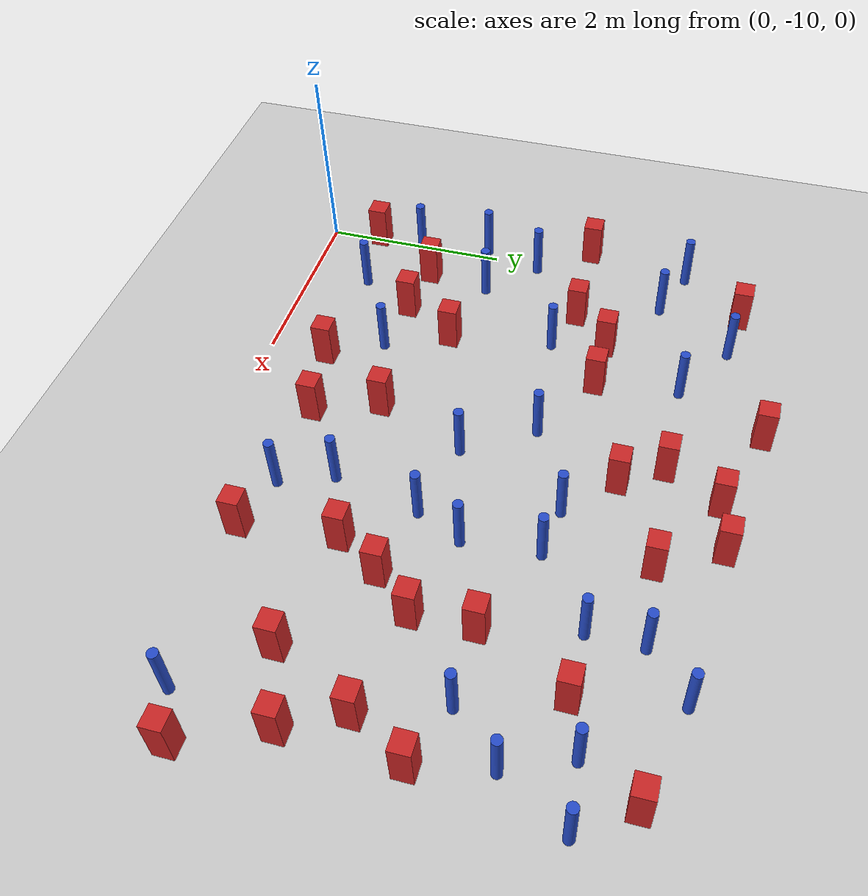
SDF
<sdf version="1.6">
 <world name="default">
  <model name="ground_plane">
   <static>1</static>
   <link name="link">
    <collision name="collision">
     <geometry><plane><normal>0 0 1</normal><size>100 100</size></plane></geometry>
     <surface><friction><ode><mu>100</mu><mu2>50</mu2></ode></friction></surface>
    </collision>
    <visual name="visual">
     <cast_shadows>0</cast_shadows>
     <geometry><plane><normal>0 0 1</normal><size>100 100</size></plane></geometry>
     <material>
      <ambient>1.0 1.0 1.0 1.0</ambient>
      <diffuse>0.8 0.8 0.8 1.0</diffuse>
      <specular>0.01 0.01 0.01 1.000000</specular>
     </material>
    </visual>
   </link>
  </model>
  <model name="pole_obstacle0">
   <static>true</static>
   <pose>5.99241946751 -6.43416623449 -9.47619616065e-06 5.49618799737e-07 2.36310414037e-07 -1.55090534814e-07</pose>
   <link name="link">
    <pose>0 0 0.3 0 -0 0</pose>
    <inertial>
     <mass>1</mass>
     <inertia><ixx>0.145833</ixx><ixy>0</ixy><ixz>0</ixz><iyy>0.145833</iyy><iyz>0</iyz><izz>0.125</izz></inertia>
    </inertial>
    <collision name="collision">
     <geometry><cylinder><radius>0.05</radius><length>.6</length></cylinder></geometry>
    </collision>
    <visual name="visual">
     <geometry><cylinder><radius>0.05</radius><length>.6</length></cylinder></geometry>
     <material>
      <script><name>Gazebo/Blue</name><uri>file://media/materials/scripts/gazebo.material</uri></script>
     </material>
    </visual>
   </link>
  </model>
  <model name="pole_obstacle5">
   <static>true</static>
   <pose>0.42777094523 -6.01034890864 -9.47619616065e-06 5.49618799737e-07 2.36310414065e-07 -1.55090534796e-07</pose>
   <link name="link">
    <pose>0 0 0.3 0 -0 0</pose>
    <inertial>
     <mass>1</mass>
     <inertia><ixx>0.145833</ixx><ixy>0</ixy><ixz>0</ixz><iyy>0.145833</iyy><iyz>0</iyz><izz>0.125</izz></inertia>
    </inertial>
    <collision name="collision">
     <geometry><cylinder><radius>0.05</radius><length>.6</length></cylinder></geometry>
    </collision>
    <visual name="visual">
     <geometry><cylinder><radius>0.05</radius><length>.6</length></cylinder></geometry>
     <material>
      <script><name>Gazebo/Blue</name><uri>file://media/materials/scripts/gazebo.material</uri></script>
     </material>
    </visual>
   </link>
  </model>
  <model name="pole_obstacle13">
   <static>true</static>
   <pose>0.775873148041 -9.32553933954 -9.47619616065e-06 5.49618799737e-07 2.36310414038e-07 -1.55090534813e-07</pose>
   <link name="link">
    <pose>0 0 0.3 0 -0 0</pose>
    <inertial>
     <mass>1</mass>
     <inertia><ixx>0.145833</ixx><ixy>0</ixy><ixz>0</ixz><iyy>0.145833</iyy><iyz>0</iyz><izz>0.125</izz></inertia>
    </inertial>
    <collision name="collision">
     <geometry><cylinder><radius>0.05</radius><length>.6</length></cylinder></geometry>
    </collision>
    <visual name="visual">
     <geometry><cylinder><radius>0.05</radius><length>.6</length></cylinder></geometry>
     <material>
      <script><name>Gazebo/Blue</name><uri>file://media/materials/scripts/gazebo.material</uri></script>
     </material>
    </visual>
   </link>
  </model>
  <model name="square_post_obstacle11">
   <static>true</static>
   <pose>4.32330241227 -9.34425784585 -6.11067671241e-07 -5.50515727128e-06 -8.79689657224e-07 2.37013304536e-05</pose>
   <link name="link">
    <pose>0 0 0.25 0 -0 0</pose>
    <inertial>
     <mass>100</mass>
     <inertia>
      <ixx>0.166667</ixx>
      <ixy>0</ixy>
      <ixz>0</ixz>
      <iyy>0.166667</iyy>
      <iyz>0</iyz>
      <izz>0.166667</izz>
     </inertia>
    </inertial>
    <collision name="collision"><geometry><box><size>.2 .2 .5</size></box></geometry></collision>
    <visual name="visual">
     <geometry><box><size>.2 .2 .5</size></box></geometry>
     <material>
      <script><name>Gazebo/Red</name><uri>file://media/materials/scripts/gazebo.material</uri></script>
     </material>
    </visual>
   </link>
  </model>
  <model name="pole_obstacle14">
   <static>true</static>
   <pose>0.0870210778384 -7.48965490971 -9.47619616065e-06 5.49618799737e-07 2.36310414063e-07 -1.55090534799e-07</pose>
   <link name="link">
    <pose>0 0 0.3 0 -0 0</pose>
    <inertial>
     <mass>1</mass>
     <inertia><ixx>0.145833</ixx><ixy>0</ixy><ixz>0</ixz><iyy>0.145833</iyy><iyz>0</iyz><izz>0.125</izz></inertia>
    </inertial>
    <collision name="collision">
     <geometry><cylinder><radius>0.05</radius><length>.6</length></cylinder></geometry>
    </collision>
    <visual name="visual">
     <geometry><cylinder><radius>0.05</radius><length>.6</length></cylinder></geometry>
     <material>
      <script><name>Gazebo/Blue</name><uri>file://media/materials/scripts/gazebo.material</uri></script>
     </material>
    </visual>
   </link>
  </model>
  <model name="square_post_obstacle16">
   <static>true</static>
   <pose>5.42275318975 -8.51460448586 -6.11067671241e-07 -5.50515727128e-06 -8.79689657224e-07 2.37013304536e-05</pose>
   <link name="link">
    <pose>0 0 0.25 0 -0 0</pose>
    <inertial>
     <mass>100</mass>
     <inertia>
      <ixx>0.166667</ixx>
      <ixy>0</ixy>
      <ixz>0</ixz>
      <iyy>0.166667</iyy>
      <iyz>0</iyz>
      <izz>0.166667</izz>
     </inertia>
    </inertial>
    <collision name="collision"><geometry><box><size>.2 .2 .5</size></box></geometry></collision>
    <visual name="visual">
     <geometry><box><size>.2 .2 .5</size></box></geometry>
     <material>
      <script><name>Gazebo/Red</name><uri>file://media/materials/scripts/gazebo.material</uri></script>
     </material>
    </visual>
   </link>
  </model>
  <model name="pole_obstacle24">
   <static>true</static>
   <pose>6.34445732167 -5.78217876827 -9.47619616065e-06 5.49618799737e-07 2.36310414037e-07 -1.55090534814e-07</pose>
   <link name="link">
    <pose>0 0 0.3 0 -0 0</pose>
    <inertial>
     <mass>1</mass>
     <inertia><ixx>0.145833</ixx><ixy>0</ixy><ixz>0</ixz><iyy>0.145833</iyy><iyz>0</iyz><izz>0.125</izz></inertia>
    </inertial>
    <collision name="collision">
     <geometry><cylinder><radius>0.05</radius><length>.6</length></cylinder></geometry>
    </collision>
    <visual name="visual">
     <geometry><cylinder><radius>0.05</radius><length>.6</length></cylinder></geometry>
     <material>
      <script><name>Gazebo/Blue</name><uri>file://media/materials/scripts/gazebo.material</uri></script>
     </material>
    </visual>
   </link>
  </model>
  <model name="pole_obstacle41">
   <static>true</static>
   <pose>2.93319817149 -7.61096703492 -9.47619616065e-06 5.49618799738e-07 2.3631041406e-07 -1.55090534801e-07</pose>
   <link name="link">
    <pose>0 0 0.3 0 -0 0</pose>
    <inertial>
     <mass>1</mass>
     <inertia><ixx>0.145833</ixx><ixy>0</ixy><ixz>0</ixz><iyy>0.145833</iyy><iyz>0</iyz><izz>0.125</izz></inertia>
    </inertial>
    <collision name="collision">
     <geometry><cylinder><radius>0.05</radius><length>.6</length></cylinder></geometry>
    </collision>
    <visual name="visual">
     <geometry><cylinder><radius>0.05</radius><length>.6</length></cylinder></geometry>
     <material>
      <script><name>Gazebo/Blue</name><uri>file://media/materials/scripts/gazebo.material</uri></script>
     </material>
    </visual>
   </link>
  </model>
  <model name="square_post_obstacle32">
   <static>true</static>
   <pose>6.14314810217 -7.12964278489 -6.11067671241e-07 -5.50515727128e-06 -8.79689657224e-07 2.37013304536e-05</pose>
   <link name="link">
    <pose>0 0 0.25 0 -0 0</pose>
    <inertial>
     <mass>100</mass>
     <inertia>
      <ixx>0.166667</ixx>
      <ixy>0</ixy>
      <ixz>0</ixz>
      <iyy>0.166667</iyy>
      <iyz>0</iyz>
      <izz>0.166667</izz>
     </inertia>
    </inertial>
    <collision name="collision"><geometry><box><size>.2 .2 .5</size></box></geometry></collision>
    <visual name="visual">
     <geometry><box><size>.2 .2 .5</size></box></geometry>
     <material>
      <script><name>Gazebo/Red</name><uri>file://media/materials/scripts/gazebo.material</uri></script>
     </material>
    </visual>
   </link>
  </model>
  <model name="square_post_obstacle33">
   <static>true</static>
   <pose>3.50740594776 -4.93892149736 -6.11067671241e-07 -5.50515727128e-06 -8.79689657224e-07 2.37013304536e-05</pose>
   <link name="link">
    <pose>0 0 0.25 0 -0 0</pose>
    <inertial>
     <mass>100</mass>
     <inertia>
      <ixx>0.166667</ixx>
      <ixy>0</ixy>
      <ixz>0</ixz>
      <iyy>0.166667</iyy>
      <iyz>0</iyz>
      <izz>0.166667</izz>
     </inertia>
    </inertial>
    <collision name="collision"><geometry><box><size>.2 .2 .5</size></box></geometry></collision>
    <visual name="visual">
     <geometry><box><size>.2 .2 .5</size></box></geometry>
     <material>
      <script><name>Gazebo/Red</name><uri>file://media/materials/scripts/gazebo.material</uri></script>
     </material>
    </visual>
   </link>
  </model>
  <model name="pole_obstacle43">
   <static>true</static>
   <pose>1.62779263539 -5.62388809391 -9.47619616065e-06 5.49618799737e-07 2.36310414061e-07 -1.550905348e-07</pose>
   <link name="link">
    <pose>0 0 0.3 0 -0 0</pose>
    <inertial>
     <mass>1</mass>
     <inertia><ixx>0.145833</ixx><ixy>0</ixy><ixz>0</ixz><iyy>0.145833</iyy><iyz>0</iyz><izz>0.125</izz></inertia>
    </inertial>
    <collision name="collision">
     <geometry><cylinder><radius>0.05</radius><length>.6</length></cylinder></geometry>
    </collision>
    <visual name="visual">
     <geometry><cylinder><radius>0.05</radius><length>.6</length></cylinder></geometry>
     <material>
      <script><name>Gazebo/Blue</name><uri>file://media/materials/scripts/gazebo.material</uri></script>
     </material>
    </visual>
   </link>
  </model>
  <model name="pole_obstacle44">
   <static>true</static>
   <pose>3.55397534535 -8.67864506908 -9.4761961606e-06 5.49618799729e-07 2.36310414e-07 -1.55090534824e-07</pose>
   <link name="link">
    <pose>0 0 0.3 0 -0 0</pose>
    <inertial>
     <mass>1</mass>
     <inertia><ixx>0.145833</ixx><ixy>0</ixy><ixz>0</ixz><iyy>0.145833</iyy><iyz>0</iyz><izz>0.125</izz></inertia>
    </inertial>
    <collision name="collision">
     <geometry><cylinder><radius>0.05</radius><length>.6</length></cylinder></geometry>
    </collision>
    <visual name="visual">
     <geometry><cylinder><radius>0.05</radius><length>.6</length></cylinder></geometry>
     <material>
      <script><name>Gazebo/Blue</name><uri>file://media/materials/scripts/gazebo.material</uri></script>
     </material>
    </visual>
   </link>
  </model>
  <model name="square_post_obstacle37">
   <static>true</static>
   <pose>0.769073441208 -6.88267445382 -6.11067671241e-07 -5.50515727128e-06 -8.79689657224e-07 2.37013304536e-05</pose>
   <link name="link">
    <pose>0 0 0.25 0 -0 0</pose>
    <inertial>
     <mass>100</mass>
     <inertia>
      <ixx>0.166667</ixx>
      <ixy>0</ixy>
      <ixz>0</ixz>
      <iyy>0.166667</iyy>
      <iyz>0</iyz>
      <izz>0.166667</izz>
     </inertia>
    </inertial>
    <collision name="collision"><geometry><box><size>.2 .2 .5</size></box></geometry></collision>
    <visual name="visual">
     <geometry><box><size>.2 .2 .5</size></box></geometry>
     <material>
      <script><name>Gazebo/Red</name><uri>file://media/materials/scripts/gazebo.material</uri></script>
     </material>
    </visual>
   </link>
  </model>
  <model name="pole_obstacle48">
   <static>true</static>
   <pose>5.98614644102 -9.24511098506 -9.47619616065e-06 5.49618799737e-07 2.36310414065e-07 -1.55090534796e-07</pose>
   <link name="link">
    <pose>0 0 0.3 0 -0 0</pose>
    <inertial>
     <mass>1</mass>
     <inertia><ixx>0.145833</ixx><ixy>0</ixy><ixz>0</ixz><iyy>0.145833</iyy><iyz>0</iyz><izz>0.125</izz></inertia>
    </inertial>
    <collision name="collision">
     <geometry><cylinder><radius>0.05</radius><length>.6</length></cylinder></geometry>
    </collision>
    <visual name="visual">
     <geometry><cylinder><radius>0.05</radius><length>.6</length></cylinder></geometry>
     <material>
      <script><name>Gazebo/Blue</name><uri>file://media/materials/scripts/gazebo.material</uri></script>
     </material>
    </visual>
   </link>
  </model>
  <model name="square_post_obstacle38">
   <static>true</static>
   <pose>0.379442224547 -5.14035684653 -6.11067671241e-07 -5.50515727128e-06 -8.79689657224e-07 2.37013304536e-05</pose>
   <link name="link">
    <pose>0 0 0.25 0 -0 0</pose>
    <inertial>
     <mass>100</mass>
     <inertia>
      <ixx>0.166667</ixx>
      <ixy>0</ixy>
      <ixz>0</ixz>
      <iyy>0.166667</iyy>
      <iyz>0</iyz>
      <izz>0.166667</izz>
     </inertia>
    </inertial>
    <collision name="collision"><geometry><box><size>.2 .2 .5</size></box></geometry></collision>
    <visual name="visual">
     <geometry><box><size>.2 .2 .5</size></box></geometry>
     <material>
      <script><name>Gazebo/Red</name><uri>file://media/materials/scripts/gazebo.material</uri></script>
     </material>
    </visual>
   </link>
  </model>
  <model name="square_post_obstacle40">
   <static>true</static>
   <pose>2.95809175233 -6.03029839213 -6.11067671241e-07 -5.50515727128e-06 -8.79689657224e-07 2.37013304536e-05</pose>
   <link name="link">
    <pose>0 0 0.25 0 -0 0</pose>
    <inertial>
     <mass>100</mass>
     <inertia>
      <ixx>0.166667</ixx>
      <ixy>0</ixy>
      <ixz>0</ixz>
      <iyy>0.166667</iyy>
      <iyz>0</iyz>
      <izz>0.166667</izz>
     </inertia>
    </inertial>
    <collision name="collision"><geometry><box><size>.2 .2 .5</size></box></geometry></collision>
    <visual name="visual">
     <geometry><box><size>.2 .2 .5</size></box></geometry>
     <material>
      <script><name>Gazebo/Red</name><uri>file://media/materials/scripts/gazebo.material</uri></script>
     </material>
    </visual>
   </link>
  </model>
  <model name="pole_obstacle60">
   <static>true</static>
   <pose>3.41486497941 -6.48596723546 -9.47619616065e-06 5.49618799738e-07 2.3631041406e-07 -1.55090534801e-07</pose>
   <link name="link">
    <pose>0 0 0.3 0 -0 0</pose>
    <inertial>
     <mass>1</mass>
     <inertia><ixx>0.145833</ixx><ixy>0</ixy><ixz>0</ixz><iyy>0.145833</iyy><iyz>0</iyz><izz>0.125</izz></inertia>
    </inertial>
    <collision name="collision">
     <geometry><cylinder><radius>0.05</radius><length>.6</length></cylinder></geometry>
    </collision>
    <visual name="visual">
     <geometry><cylinder><radius>0.05</radius><length>.6</length></cylinder></geometry>
     <material>
      <script><name>Gazebo/Blue</name><uri>file://media/materials/scripts/gazebo.material</uri></script>
     </material>
    </visual>
   </link>
  </model>
  <model name="square_post_obstacle46">
   <static>true</static>
   <pose>6.11223898464 -8.22738665968 -6.11067671241e-07 -5.50515727128e-06 -8.79689657224e-07 2.37013304536e-05</pose>
   <link name="link">
    <pose>0 0 0.25 0 -0 0</pose>
    <inertial>
     <mass>100</mass>
     <inertia>
      <ixx>0.166667</ixx>
      <ixy>0</ixy>
      <ixz>0</ixz>
      <iyy>0.166667</iyy>
      <iyz>0</iyz>
      <izz>0.166667</izz>
     </inertia>
    </inertial>
    <collision name="collision"><geometry><box><size>.2 .2 .5</size></box></geometry></collision>
    <visual name="visual">
     <geometry><box><size>.2 .2 .5</size></box></geometry>
     <material>
      <script><name>Gazebo/Red</name><uri>file://media/materials/scripts/gazebo.material</uri></script>
     </material>
    </visual>
   </link>
  </model>
  <model name="pole_obstacle66">
   <static>true</static>
   <pose>1.26290681179 -7.06058610948 -9.47619616065e-06 5.49618799737e-07 2.36310414061e-07 -1.550905348e-07</pose>
   <link name="link">
    <pose>0 0 0.3 0 -0 0</pose>
    <inertial>
     <mass>1</mass>
     <inertia><ixx>0.145833</ixx><ixy>0</ixy><ixz>0</ixz><iyy>0.145833</iyy><iyz>0</iyz><izz>0.125</izz></inertia>
    </inertial>
    <collision name="collision">
     <geometry><cylinder><radius>0.05</radius><length>.6</length></cylinder></geometry>
    </collision>
    <visual name="visual">
     <geometry><cylinder><radius>0.05</radius><length>.6</length></cylinder></geometry>
     <material>
      <script><name>Gazebo/Blue</name><uri>file://media/materials/scripts/gazebo.material</uri></script>
     </material>
    </visual>
   </link>
  </model>
  <model name="square_post_obstacle53">
   <static>true</static>
   <pose>0.492399578169 -8.64545292982 -6.11067671241e-07 -5.50515727128e-06 -8.79689657224e-07 2.37013304536e-05</pose>
   <link name="link">
    <pose>0 0 0.25 0 -0 0</pose>
    <inertial>
     <mass>100</mass>
     <inertia>
      <ixx>0.166667</ixx>
      <ixy>0</ixy>
      <ixz>0</ixz>
      <iyy>0.166667</iyy>
      <iyz>0</iyz>
      <izz>0.166667</izz>
     </inertia>
    </inertial>
    <collision name="collision"><geometry><box><size>.2 .2 .5</size></box></geometry></collision>
    <visual name="visual">
     <geometry><box><size>.2 .2 .5</size></box></geometry>
     <material>
      <script><name>Gazebo/Red</name><uri>file://media/materials/scripts/gazebo.material</uri></script>
     </material>
    </visual>
   </link>
  </model>
  <model name="square_post_obstacle54">
   <static>true</static>
   <pose>1.16315857543 -6.49085855717 -6.11067671241e-07 -5.50515727128e-06 -8.79689657224e-07 2.37013304536e-05</pose>
   <link name="link">
    <pose>0 0 0.25 0 -0 0</pose>
    <inertial>
     <mass>100</mass>
     <inertia>
      <ixx>0.166667</ixx>
      <ixy>0</ixy>
      <ixz>0</ixz>
      <iyy>0.166667</iyy>
      <iyz>0</iyz>
      <izz>0.166667</izz>
     </inertia>
    </inertial>
    <collision name="collision"><geometry><box><size>.2 .2 .5</size></box></geometry></collision>
    <visual name="visual">
     <geometry><box><size>.2 .2 .5</size></box></geometry>
     <material>
      <script><name>Gazebo/Red</name><uri>file://media/materials/scripts/gazebo.material</uri></script>
     </material>
    </visual>
   </link>
  </model>
  <model name="square_post_obstacle58">
   <static>true</static>
   <pose>2.05451719014 -4.73804565977 -6.11067671241e-07 -5.50515727128e-06 -8.79689657224e-07 2.37013304536e-05</pose>
   <link name="link">
    <pose>0 0 0.25 0 -0 0</pose>
    <inertial>
     <mass>100</mass>
     <inertia>
      <ixx>0.166667</ixx>
      <ixy>0</ixy>
      <ixz>0</ixz>
      <iyy>0.166667</iyy>
      <iyz>0</iyz>
      <izz>0.166667</izz>
     </inertia>
    </inertial>
    <collision name="collision"><geometry><box><size>.2 .2 .5</size></box></geometry></collision>
    <visual name="visual">
     <geometry><box><size>.2 .2 .5</size></box></geometry>
     <material>
      <script><name>Gazebo/Red</name><uri>file://media/materials/scripts/gazebo.material</uri></script>
     </material>
    </visual>
   </link>
  </model>
  <model name="square_post_obstacle60">
   <static>true</static>
   <pose>4.23607168523 -8.37457816268 -6.11067671241e-07 -5.50515727128e-06 -8.79689657224e-07 2.37013304536e-05</pose>
   <link name="link">
    <pose>0 0 0.25 0 -0 0</pose>
    <inertial>
     <mass>100</mass>
     <inertia>
      <ixx>0.166667</ixx>
      <ixy>0</ixy>
      <ixz>0</ixz>
      <iyy>0.166667</iyy>
      <iyz>0</iyz>
      <izz>0.166667</izz>
     </inertia>
    </inertial>
    <collision name="collision"><geometry><box><size>.2 .2 .5</size></box></geometry></collision>
    <visual name="visual">
     <geometry><box><size>.2 .2 .5</size></box></geometry>
     <material>
      <script><name>Gazebo/Red</name><uri>file://media/materials/scripts/gazebo.material</uri></script>
     </material>
    </visual>
   </link>
  </model>
  <model name="square_post_obstacle70">
   <static>true</static>
   <pose>1.43855483052 -8.14565920532 -6.11067671241e-07 -5.50515727128e-06 -8.79689657224e-07 2.37013304536e-05</pose>
   <link name="link">
    <pose>0 0 0.25 0 -0 0</pose>
    <inertial>
     <mass>100</mass>
     <inertia>
      <ixx>0.166667</ixx>
      <ixy>0</ixy>
      <ixz>0</ixz>
      <iyy>0.166667</iyy>
      <iyz>0</iyz>
      <izz>0.166667</izz>
     </inertia>
    </inertial>
    <collision name="collision"><geometry><box><size>.2 .2 .5</size></box></geometry></collision>
    <visual name="visual">
     <geometry><box><size>.2 .2 .5</size></box></geometry>
     <material>
      <script><name>Gazebo/Red</name><uri>file://media/materials/scripts/gazebo.material</uri></script>
     </material>
    </visual>
   </link>
  </model>
  <model name="square_post_obstacle72">
   <static>true</static>
   <pose>3.82966361186 -5.54182311907 -6.11067671241e-07 -5.50515727128e-06 -8.79689657224e-07 2.37013304536e-05</pose>
   <link name="link">
    <pose>0 0 0.25 0 -0 0</pose>
    <inertial>
     <mass>100</mass>
     <inertia>
      <ixx>0.166667</ixx>
      <ixy>0</ixy>
      <ixz>0</ixz>
      <iyy>0.166667</iyy>
      <iyz>0</iyz>
      <izz>0.166667</izz>
     </inertia>
    </inertial>
    <collision name="collision"><geometry><box><size>.2 .2 .5</size></box></geometry></collision>
    <visual name="visual">
     <geometry><box><size>.2 .2 .5</size></box></geometry>
     <material>
      <script><name>Gazebo/Red</name><uri>file://media/materials/scripts/gazebo.material</uri></script>
     </material>
    </visual>
   </link>
  </model>
  <model name="pole_obstacle88">
   <static>true</static>
   <pose>5.56009223011 -6.91832359856 -9.47619616065e-06 5.49618799737e-07 2.36310414037e-07 -1.55090534814e-07</pose>
   <link name="link">
    <pose>0 0 0.3 0 -0 0</pose>
    <inertial>
     <mass>1</mass>
     <inertia><ixx>0.145833</ixx><ixy>0</ixy><ixz>0</ixz><iyy>0.145833</iyy><iyz>0</iyz><izz>0.125</izz></inertia>
    </inertial>
    <collision name="collision">
     <geometry><cylinder><radius>0.05</radius><length>.6</length></cylinder></geometry>
    </collision>
    <visual name="visual">
     <geometry><cylinder><radius>0.05</radius><length>.6</length></cylinder></geometry>
     <material>
      <script><name>Gazebo/Blue</name><uri>file://media/materials/scripts/gazebo.material</uri></script>
     </material>
    </visual>
   </link>
  </model>
  <model name="square_post_obstacle76">
   <static>true</static>
   <pose>5.84180132804 -7.68657872543 -6.11067671241e-07 -5.50515727128e-06 -8.79689657224e-07 2.37013304536e-05</pose>
   <link name="link">
    <pose>0 0 0.25 0 -0 0</pose>
    <inertial>
     <mass>100</mass>
     <inertia>
      <ixx>0.166667</ixx>
      <ixy>0</ixy>
      <ixz>0</ixz>
      <iyy>0.166667</iyy>
      <iyz>0</iyz>
      <izz>0.166667</izz>
     </inertia>
    </inertial>
    <collision name="collision"><geometry><box><size>.2 .2 .5</size></box></geometry></collision>
    <visual name="visual">
     <geometry><box><size>.2 .2 .5</size></box></geometry>
     <material>
      <script><name>Gazebo/Red</name><uri>file://media/materials/scripts/gazebo.material</uri></script>
     </material>
    </visual>
   </link>
  </model>
  <model name="square_post_obstacle78">
   <static>true</static>
   <pose>2.69048139267 -5.60689109878 -6.11067671241e-07 -5.50515727128e-06 -8.79689657224e-07 2.37013304536e-05</pose>
   <link name="link">
    <pose>0 0 0.25 0 -0 0</pose>
    <inertial>
     <mass>100</mass>
     <inertia>
      <ixx>0.166667</ixx>
      <ixy>0</ixy>
      <ixz>0</ixz>
      <iyy>0.166667</iyy>
      <iyz>0</iyz>
      <izz>0.166667</izz>
     </inertia>
    </inertial>
    <collision name="collision"><geometry><box><size>.2 .2 .5</size></box></geometry></collision>
    <visual name="visual">
     <geometry><box><size>.2 .2 .5</size></box></geometry>
     <material>
      <script><name>Gazebo/Red</name><uri>file://media/materials/scripts/gazebo.material</uri></script>
     </material>
    </visual>
   </link>
  </model>
  <model name="square_post_obstacle83">
   <static>true</static>
   <pose>6.01312358564 -5.30156532975 -6.11067671241e-07 -5.50515727128e-06 -8.79689657224e-07 2.37013304536e-05</pose>
   <link name="link">
    <pose>0 0 0.25 0 -0 0</pose>
    <inertial>
     <mass>100</mass>
     <inertia>
      <ixx>0.166667</ixx>
      <ixy>0</ixy>
      <ixz>0</ixz>
      <iyy>0.166667</iyy>
      <iyz>0</iyz>
      <izz>0.166667</izz>
     </inertia>
    </inertial>
    <collision name="collision"><geometry><box><size>.2 .2 .5</size></box></geometry></collision>
    <visual name="visual">
     <geometry><box><size>.2 .2 .5</size></box></geometry>
     <material>
      <script><name>Gazebo/Red</name><uri>file://media/materials/scripts/gazebo.material</uri></script>
     </material>
    </visual>
   </link>
  </model>
  <model name="pole_obstacle93">
   <static>true</static>
   <pose>-0.147644071426 -5.80743205294 -9.47619616065e-06 5.49618799737e-07 2.36310414062e-07 -1.550905348e-07</pose>
   <link name="link">
    <pose>0 0 0.3 0 -0 0</pose>
    <inertial>
     <mass>1</mass>
     <inertia><ixx>0.145833</ixx><ixy>0</ixy><ixz>0</ixz><iyy>0.145833</iyy><iyz>0</iyz><izz>0.125</izz></inertia>
    </inertial>
    <collision name="collision">
     <geometry><cylinder><radius>0.05</radius><length>.6</length></cylinder></geometry>
    </collision>
    <visual name="visual">
     <geometry><cylinder><radius>0.05</radius><length>.6</length></cylinder></geometry>
     <material>
      <script><name>Gazebo/Blue</name><uri>file://media/materials/scripts/gazebo.material</uri></script>
     </material>
    </visual>
   </link>
  </model>
  <model name="pole_obstacle96">
   <static>true</static>
   <pose>3.97596157425 -7.31529230225 -9.47619616065e-06 5.49618799737e-07 2.36310414049e-07 -1.55090534808e-07</pose>
   <link name="link">
    <pose>0 0 0.3 0 -0 0</pose>
    <inertial>
     <mass>1</mass>
     <inertia><ixx>0.145833</ixx><ixy>0</ixy><ixz>0</ixz><iyy>0.145833</iyy><iyz>0</iyz><izz>0.125</izz></inertia>
    </inertial>
    <collision name="collision">
     <geometry><cylinder><radius>0.05</radius><length>.6</length></cylinder></geometry>
    </collision>
    <visual name="visual">
     <geometry><cylinder><radius>0.05</radius><length>.6</length></cylinder></geometry>
     <material>
      <script><name>Gazebo/Blue</name><uri>file://media/materials/scripts/gazebo.material</uri></script>
     </material>
    </visual>
   </link>
  </model>
  <model name="pole_obstacle100">
   <static>true</static>
   <pose>0.58080758319 -7.97608189412 -9.47619616065e-06 5.49618799737e-07 2.36310414051e-07 -1.55090534805e-07</pose>
   <link name="link">
    <pose>0 0 0.3 0 -0 0</pose>
    <inertial>
     <mass>1</mass>
     <inertia><ixx>0.145833</ixx><ixy>0</ixy><ixz>0</ixz><iyy>0.145833</iyy><iyz>0</iyz><izz>0.125</izz></inertia>
    </inertial>
    <collision name="collision">
     <geometry><cylinder><radius>0.05</radius><length>.6</length></cylinder></geometry>
    </collision>
    <visual name="visual">
     <geometry><cylinder><radius>0.05</radius><length>.6</length></cylinder></geometry>
     <material>
      <script><name>Gazebo/Blue</name><uri>file://media/materials/scripts/gazebo.material</uri></script>
     </material>
    </visual>
   </link>
  </model>
  <model name="square_post_obstacle95">
   <static>true</static>
   <pose>4.83171853792 -6.91309922916 -6.11067671241e-07 -5.50515727128e-06 -8.79689657224e-07 2.37013304536e-05</pose>
   <link name="link">
    <pose>0 0 0.25 0 -0 0</pose>
    <inertial>
     <mass>100</mass>
     <inertia>
      <ixx>0.166667</ixx>
      <ixy>0</ixy>
      <ixz>0</ixz>
      <iyy>0.166667</iyy>
      <iyz>0</iyz>
      <izz>0.166667</izz>
     </inertia>
    </inertial>
    <collision name="collision"><geometry><box><size>.2 .2 .5</size></box></geometry></collision>
    <visual name="visual">
     <geometry><box><size>.2 .2 .5</size></box></geometry>
     <material>
      <script><name>Gazebo/Red</name><uri>file://media/materials/scripts/gazebo.material</uri></script>
     </material>
    </visual>
   </link>
  </model>
  <model name="square_post_obstacle97">
   <static>true</static>
   <pose>4.84715045723 -7.51955522371 -6.11067671241e-07 -5.50515727128e-06 -8.79689657224e-07 2.37013304536e-05</pose>
   <link name="link">
    <pose>0 0 0.25 0 -0 0</pose>
    <inertial>
     <mass>100</mass>
     <inertia>
      <ixx>0.166667</ixx>
      <ixy>0</ixy>
      <ixz>0</ixz>
      <iyy>0.166667</iyy>
      <iyz>0</iyz>
      <izz>0.166667</izz>
     </inertia>
    </inertial>
    <collision name="collision"><geometry><box><size>.2 .2 .5</size></box></geometry></collision>
    <visual name="visual">
     <geometry><box><size>.2 .2 .5</size></box></geometry>
     <material>
      <script><name>Gazebo/Red</name><uri>file://media/materials/scripts/gazebo.material</uri></script>
     </material>
    </visual>
   </link>
  </model>
  <model name="square_post_obstacle109">
   <static>true</static>
   <pose>2.5705029415 -8.53972938645 -6.11067671241e-07 -5.50515727128e-06 -8.79689657224e-07 2.37013304536e-05</pose>
   <link name="link">
    <pose>0 0 0.25 0 -0 0</pose>
    <inertial>
     <mass>100</mass>
     <inertia>
      <ixx>0.166667</ixx>
      <ixy>0</ixy>
      <ixz>0</ixz>
      <iyy>0.166667</iyy>
      <iyz>0</iyz>
      <izz>0.166667</izz>
     </inertia>
    </inertial>
    <collision name="collision"><geometry><box><size>.2 .2 .5</size></box></geometry></collision>
    <visual name="visual">
     <geometry><box><size>.2 .2 .5</size></box></geometry>
     <material>
      <script><name>Gazebo/Red</name><uri>file://media/materials/scripts/gazebo.material</uri></script>
     </material>
    </visual>
   </link>
  </model>
  <model name="square_post_obstacle114">
   <static>true</static>
   <pose>0.00595835529791 -9.41388338378 -6.11067671241e-07 -5.50515727128e-06 -8.79689657224e-07 2.37013304536e-05</pose>
   <link name="link">
    <pose>0 0 0.25 0 -0 0</pose>
    <inertial>
     <mass>100</mass>
     <inertia>
      <ixx>0.166667</ixx>
      <ixy>0</ixy>
      <ixz>0</ixz>
      <iyy>0.166667</iyy>
      <iyz>0</iyz>
      <izz>0.166667</izz>
     </inertia>
    </inertial>
    <collision name="collision"><geometry><box><size>.2 .2 .5</size></box></geometry></collision>
    <visual name="visual">
     <geometry><box><size>.2 .2 .5</size></box></geometry>
     <material>
      <script><name>Gazebo/Red</name><uri>file://media/materials/scripts/gazebo.material</uri></script>
     </material>
    </visual>
   </link>
  </model>
  <model name="pole_obstacle119">
   <static>true</static>
   <pose>0.937249858687 -5.20120209892 -9.47619616065e-06 5.49618799737e-07 2.36310414065e-07 -1.55090534796e-07</pose>
   <link name="link">
    <pose>0 0 0.3 0 -0 0</pose>
    <inertial>
     <mass>1</mass>
     <inertia><ixx>0.145833</ixx><ixy>0</ixy><ixz>0</ixz><iyy>0.145833</iyy><iyz>0</iyz><izz>0.125</izz></inertia>
    </inertial>
    <collision name="collision">
     <geometry><cylinder><radius>0.05</radius><length>.6</length></cylinder></geometry>
    </collision>
    <visual name="visual">
     <geometry><cylinder><radius>0.05</radius><length>.6</length></cylinder></geometry>
     <material>
      <script><name>Gazebo/Blue</name><uri>file://media/materials/scripts/gazebo.material</uri></script>
     </material>
    </visual>
   </link>
  </model>
  <model name="pole_obstacle125">
   <static>true</static>
   <pose>4.62891903487 -5.47524710677 -9.47619616065e-06 5.49618799737e-07 2.36310414037e-07 -1.55090534814e-07</pose>
   <link name="link">
    <pose>0 0 0.3 0 -0 0</pose>
    <inertial>
     <mass>1</mass>
     <inertia><ixx>0.145833</ixx><ixy>0</ixy><ixz>0</ixz><iyy>0.145833</iyy><iyz>0</iyz><izz>0.125</izz></inertia>
    </inertial>
    <collision name="collision">
     <geometry><cylinder><radius>0.05</radius><length>.6</length></cylinder></geometry>
    </collision>
    <visual name="visual">
     <geometry><cylinder><radius>0.05</radius><length>.6</length></cylinder></geometry>
     <material>
      <script><name>Gazebo/Blue</name><uri>file://media/materials/scripts/gazebo.material</uri></script>
     </material>
    </visual>
   </link>
  </model>
  <model name="square_post_obstacle131">
   <static>true</static>
   <pose>1.73867536407 -6.49273728326 -6.11067671241e-07 -5.50515727128e-06 -8.79689657224e-07 2.37013304536e-05</pose>
   <link name="link">
    <pose>0 0 0.25 0 -0 0</pose>
    <inertial>
     <mass>100</mass>
     <inertia>
      <ixx>0.166667</ixx>
      <ixy>0</ixy>
      <ixz>0</ixz>
      <iyy>0.166667</iyy>
      <iyz>0</iyz>
      <izz>0.166667</izz>
     </inertia>
    </inertial>
    <collision name="collision"><geometry><box><size>.2 .2 .5</size></box></geometry></collision>
    <visual name="visual">
     <geometry><box><size>.2 .2 .5</size></box></geometry>
     <material>
      <script><name>Gazebo/Red</name><uri>file://media/materials/scripts/gazebo.material</uri></script>
     </material>
    </visual>
   </link>
  </model>
  <model name="square_post_obstacle132">
   <static>true</static>
   <pose>5.26081800911 -6.0176449394 -6.11067671241e-07 -5.50515727128e-06 -8.79689657224e-07 2.37013304536e-05</pose>
   <link name="link">
    <pose>0 0 0.25 0 -0 0</pose>
    <inertial>
     <mass>100</mass>
     <inertia>
      <ixx>0.166667</ixx>
      <ixy>0</ixy>
      <ixz>0</ixz>
      <iyy>0.166667</iyy>
      <iyz>0</iyz>
      <izz>0.166667</izz>
     </inertia>
    </inertial>
    <collision name="collision"><geometry><box><size>.2 .2 .5</size></box></geometry></collision>
    <visual name="visual">
     <geometry><box><size>.2 .2 .5</size></box></geometry>
     <material>
      <script><name>Gazebo/Red</name><uri>file://media/materials/scripts/gazebo.material</uri></script>
     </material>
    </visual>
   </link>
  </model>
  <model name="pole_obstacle134">
   <static>true</static>
   <pose>5.0737028729 -5.05507693935 -9.47619616065e-06 5.49618799737e-07 2.36310414037e-07 -1.55090534814e-07</pose>
   <link name="link">
    <pose>0 0 0.3 0 -0 0</pose>
    <inertial>
     <mass>1</mass>
     <inertia><ixx>0.145833</ixx><ixy>0</ixy><ixz>0</ixz><iyy>0.145833</iyy><iyz>0</iyz><izz>0.125</izz></inertia>
    </inertial>
    <collision name="collision">
     <geometry><cylinder><radius>0.05</radius><length>.6</length></cylinder></geometry>
    </collision>
    <visual name="visual">
     <geometry><cylinder><radius>0.05</radius><length>.6</length></cylinder></geometry>
     <material>
      <script><name>Gazebo/Blue</name><uri>file://media/materials/scripts/gazebo.material</uri></script>
     </material>
    </visual>
   </link>
  </model>
  <model name="square_post_obstacle135">
   <static>true</static>
   <pose>-0.313893572052 -6.92312467733 -6.11067671241e-07 -5.50515727128e-06 -8.79689657224e-07 2.37013304536e-05</pose>
   <link name="link">
    <pose>0 0 0.25 0 -0 0</pose>
    <inertial>
     <mass>100</mass>
     <inertia>
      <ixx>0.166667</ixx>
      <ixy>0</ixy>
      <ixz>0</ixz>
      <iyy>0.166667</iyy>
      <iyz>0</iyz>
      <izz>0.166667</izz>
     </inertia>
    </inertial>
    <collision name="collision"><geometry><box><size>.2 .2 .5</size></box></geometry></collision>
    <visual name="visual">
     <geometry><box><size>.2 .2 .5</size></box></geometry>
     <material>
      <script><name>Gazebo/Red</name><uri>file://media/materials/scripts/gazebo.material</uri></script>
     </material>
    </visual>
   </link>
  </model>
  <model name="pole_obstacle147">
   <static>true</static>
   <pose>-0.000760247916841 -8.91045351846 -9.47619616065e-06 5.49618799737e-07 2.3631041404e-07 -1.55090534813e-07</pose>
   <link name="link">
    <pose>0 0 0.3 0 -0 0</pose>
    <inertial>
     <mass>1</mass>
     <inertia><ixx>0.145833</ixx><ixy>0</ixy><ixz>0</ixz><iyy>0.145833</iyy><iyz>0</iyz><izz>0.125</izz></inertia>
    </inertial>
    <collision name="collision">
     <geometry><cylinder><radius>0.05</radius><length>.6</length></cylinder></geometry>
    </collision>
    <visual name="visual">
     <geometry><cylinder><radius>0.05</radius><length>.6</length></cylinder></geometry>
     <material>
      <script><name>Gazebo/Blue</name><uri>file://media/materials/scripts/gazebo.material</uri></script>
     </material>
    </visual>
   </link>
  </model>
  <model name="square_post_obstacle141">
   <static>true</static>
   <pose>2.01211696933 -9.34844187267 -6.11067671241e-07 -5.50515727128e-06 -8.79689657224e-07 2.37013304536e-05</pose>
   <link name="link">
    <pose>0 0 0.25 0 -0 0</pose>
    <inertial>
     <mass>100</mass>
     <inertia>
      <ixx>0.166667</ixx>
      <ixy>0</ixy>
      <ixz>0</ixz>
      <iyy>0.166667</iyy>
      <iyz>0</iyz>
      <izz>0.166667</izz>
     </inertia>
    </inertial>
    <collision name="collision"><geometry><box><size>.2 .2 .5</size></box></geometry></collision>
    <visual name="visual">
     <geometry><box><size>.2 .2 .5</size></box></geometry>
     <material>
      <script><name>Gazebo/Red</name><uri>file://media/materials/scripts/gazebo.material</uri></script>
     </material>
    </visual>
   </link>
  </model>
  <model name="pole_obstacle148">
   <static>true</static>
   <pose>1.71236268502 -8.80751371277 -9.47619616065e-06 5.49618799737e-07 2.36310414046e-07 -1.55090534809e-07</pose>
   <link name="link">
    <pose>0 0 0.3 0 -0 0</pose>
    <inertial>
     <mass>1</mass>
     <inertia><ixx>0.145833</ixx><ixy>0</ixy><ixz>0</ixz><iyy>0.145833</iyy><iyz>0</iyz><izz>0.125</izz></inertia>
    </inertial>
    <collision name="collision">
     <geometry><cylinder><radius>0.05</radius><length>.6</length></cylinder></geometry>
    </collision>
    <visual name="visual">
     <geometry><cylinder><radius>0.05</radius><length>.6</length></cylinder></geometry>
     <material>
      <script><name>Gazebo/Blue</name><uri>file://media/materials/scripts/gazebo.material</uri></script>
     </material>
    </visual>
   </link>
  </model>
  <model name="pole_obstacle149">
   <static>true</static>
   <pose>2.49926438011 -6.9262462271 -9.47619616065e-06 5.49618799738e-07 2.3631041406e-07 -1.55090534801e-07</pose>
   <link name="link">
    <pose>0 0 0.3 0 -0 0</pose>
    <inertial>
     <mass>1</mass>
     <inertia><ixx>0.145833</ixx><ixy>0</ixy><ixz>0</ixz><iyy>0.145833</iyy><iyz>0</iyz><izz>0.125</izz></inertia>
    </inertial>
    <collision name="collision">
     <geometry><cylinder><radius>0.05</radius><length>.6</length></cylinder></geometry>
    </collision>
    <visual name="visual">
     <geometry><cylinder><radius>0.05</radius><length>.6</length></cylinder></geometry>
     <material>
      <script><name>Gazebo/Blue</name><uri>file://media/materials/scripts/gazebo.material</uri></script>
     </material>
    </visual>
   </link>
  </model>
  <model name="square_post_obstacle143">
   <static>true</static>
   <pose>2.80528834129 -9.19529671113 -6.11067671241e-07 -5.50515727128e-06 -8.79689657224e-07 2.37013304536e-05</pose>
   <link name="link">
    <pose>0 0 0.25 0 -0 0</pose>
    <inertial>
     <mass>100</mass>
     <inertia>
      <ixx>0.166667</ixx>
      <ixy>0</ixy>
      <ixz>0</ixz>
      <iyy>0.166667</iyy>
      <iyz>0</iyz>
      <izz>0.166667</izz>
     </inertia>
    </inertial>
    <collision name="collision"><geometry><box><size>.2 .2 .5</size></box></geometry></collision>
    <visual name="visual">
     <geometry><box><size>.2 .2 .5</size></box></geometry>
     <material>
      <script><name>Gazebo/Red</name><uri>file://media/materials/scripts/gazebo.material</uri></script>
     </material>
    </visual>
   </link>
  </model>
  <model name="pole_obstacle160">
   <static>true</static>
   <pose>3.75856557716 -7.78326670486 -9.47619616065e-06 5.49618799738e-07 2.3631041406e-07 -1.55090534801e-07</pose>
   <link name="link">
    <pose>0 0 0.3 0 -0 0</pose>
    <inertial>
     <mass>1</mass>
     <inertia><ixx>0.145833</ixx><ixy>0</ixy><ixz>0</ixz><iyy>0.145833</iyy><iyz>0</iyz><izz>0.125</izz></inertia>
    </inertial>
    <collision name="collision">
     <geometry><cylinder><radius>0.05</radius><length>.6</length></cylinder></geometry>
    </collision>
    <visual name="visual">
     <geometry><cylinder><radius>0.05</radius><length>.6</length></cylinder></geometry>
     <material>
      <script><name>Gazebo/Blue</name><uri>file://media/materials/scripts/gazebo.material</uri></script>
     </material>
    </visual>
   </link>
  </model>
  <model name="pole_obstacle162">
   <static>true</static>
   <pose>4.62638917879 -6.01567184599 -9.47619616065e-06 5.49618799737e-07 2.36310414037e-07 -1.55090534814e-07</pose>
   <link name="link">
    <pose>0 0 0.3 0 -0 0</pose>
    <inertial>
     <mass>1</mass>
     <inertia><ixx>0.145833</ixx><ixy>0</ixy><ixz>0</ixz><iyy>0.145833</iyy><iyz>0</iyz><izz>0.125</izz></inertia>
    </inertial>
    <collision name="collision">
     <geometry><cylinder><radius>0.05</radius><length>.6</length></cylinder></geometry>
    </collision>
    <visual name="visual">
     <geometry><cylinder><radius>0.05</radius><length>.6</length></cylinder></geometry>
     <material>
      <script><name>Gazebo/Blue</name><uri>file://media/materials/scripts/gazebo.material</uri></script>
     </material>
    </visual>
   </link>
  </model>
  <model name="square_post_obstacle161">
   <static>true</static>
   <pose>4.51108909822 -7.92110083998 -6.11067671241e-07 -5.50515727128e-06 -8.79689657224e-07 2.37013304536e-05</pose>
   <link name="link">
    <pose>0 0 0.25 0 -0 0</pose>
    <inertial>
     <mass>100</mass>
     <inertia>
      <ixx>0.166667</ixx>
      <ixy>0</ixy>
      <ixz>0</ixz>
      <iyy>0.166667</iyy>
      <iyz>0</iyz>
      <izz>0.166667</izz>
     </inertia>
    </inertial>
    <collision name="collision"><geometry><box><size>.2 .2 .5</size></box></geometry></collision>
    <visual name="visual">
     <geometry><box><size>.2 .2 .5</size></box></geometry>
     <material>
      <script><name>Gazebo/Red</name><uri>file://media/materials/scripts/gazebo.material</uri></script>
     </material>
    </visual>
   </link>
  </model>
  <model name="pole_obstacle179">
   <static>true</static>
   <pose>3.92547799264 -6.55062660991 -9.47619616065e-06 5.49618799738e-07 2.3631041406e-07 -1.55090534801e-07</pose>
   <link name="link">
    <pose>0 0 0.3 0 -0 0</pose>
    <inertial>
     <mass>1</mass>
     <inertia><ixx>0.145833</ixx><ixy>0</ixy><ixz>0</ixz><iyy>0.145833</iyy><iyz>0</iyz><izz>0.125</izz></inertia>
    </inertial>
    <collision name="collision">
     <geometry><cylinder><radius>0.05</radius><length>.6</length></cylinder></geometry>
    </collision>
    <visual name="visual">
     <geometry><cylinder><radius>0.05</radius><length>.6</length></cylinder></geometry>
     <material>
      <script><name>Gazebo/Blue</name><uri>file://media/materials/scripts/gazebo.material</uri></script>
     </material>
    </visual>
   </link>
  </model>
  <model name="pole_obstacle187">
   <static>true</static>
   <pose>-0.0940678120226 -8.11921633949 -9.47619616065e-06 5.49618799738e-07 2.36310414031e-07 -1.55090534818e-07</pose>
   <link name="link">
    <pose>0 0 0.3 0 -0 0</pose>
    <inertial>
     <mass>1</mass>
     <inertia><ixx>0.145833</ixx><ixy>0</ixy><ixz>0</ixz><iyy>0.145833</iyy><iyz>0</iyz><izz>0.125</izz></inertia>
    </inertial>
    <collision name="collision">
     <geometry><cylinder><radius>0.05</radius><length>.6</length></cylinder></geometry>
    </collision>
    <visual name="visual">
     <geometry><cylinder><radius>0.05</radius><length>.6</length></cylinder></geometry>
     <material>
      <script><name>Gazebo/Blue</name><uri>file://media/materials/scripts/gazebo.material</uri></script>
     </material>
    </visual>
   </link>
  </model>
  <model name="square_post_obstacle201">
   <static>true</static>
   <pose>1.0974531401 -8.71808004509 -6.11067671241e-07 -5.50515727128e-06 -8.79689657224e-07 2.37013304536e-05</pose>
   <link name="link">
    <pose>0 0 0.25 0 -0 0</pose>
    <inertial>
     <mass>100</mass>
     <inertia>
      <ixx>0.166667</ixx>
      <ixy>0</ixy>
      <ixz>0</ixz>
      <iyy>0.166667</iyy>
      <iyz>0</iyz>
      <izz>0.166667</izz>
     </inertia>
    </inertial>
    <collision name="collision"><geometry><box><size>.2 .2 .5</size></box></geometry></collision>
    <visual name="visual">
     <geometry><box><size>.2 .2 .5</size></box></geometry>
     <material>
      <script><name>Gazebo/Red</name><uri>file://media/materials/scripts/gazebo.material</uri></script>
     </material>
    </visual>
   </link>
  </model>
  <model name="square_post_obstacle205">
   <static>true</static>
   <pose>2.99165324432 -5.04242431881 -6.11067671241e-07 -5.50515727128e-06 -8.79689657224e-07 2.37013304536e-05</pose>
   <link name="link">
    <pose>0 0 0.25 0 -0 0</pose>
    <inertial>
     <mass>100</mass>
     <inertia>
      <ixx>0.166667</ixx>
      <ixy>0</ixy>
      <ixz>0</ixz>
      <iyy>0.166667</iyy>
      <iyz>0</iyz>
      <izz>0.166667</izz>
     </inertia>
    </inertial>
    <collision name="collision"><geometry><box><size>.2 .2 .5</size></box></geometry></collision>
    <visual name="visual">
     <geometry><box><size>.2 .2 .5</size></box></geometry>
     <material>
      <script><name>Gazebo/Red</name><uri>file://media/materials/scripts/gazebo.material</uri></script>
     </material>
    </visual>
   </link>
  </model>
  <model name="pole_obstacle193">
   <static>true</static>
   <pose>3.74821099091 -9.21002142364 -9.4761961606e-06 5.49618799729e-07 2.36310414e-07 -1.55090534824e-07</pose>
   <link name="link">
    <pose>0 0 0.3 0 -0 0</pose>
    <inertial>
     <mass>1</mass>
     <inertia><ixx>0.145833</ixx><ixy>0</ixy><ixz>0</ixz><iyy>0.145833</iyy><iyz>0</iyz><izz>0.125</izz></inertia>
    </inertial>
    <collision name="collision">
     <geometry><cylinder><radius>0.05</radius><length>.6</length></cylinder></geometry>
    </collision>
    <visual name="visual">
     <geometry><cylinder><radius>0.05</radius><length>.6</length></cylinder></geometry>
     <material>
      <script><name>Gazebo/Blue</name><uri>file://media/materials/scripts/gazebo.material</uri></script>
     </material>
    </visual>
   </link>
  </model>
  <model name="square_post_obstacle213">
   <static>true</static>
   <pose>6.43661302024 -9.02015515363 -6.11067671241e-07 -5.50515727128e-06 -8.79689657224e-07 2.37013304536e-05</pose>
   <link name="link">
    <pose>0 0 0.25 0 -0 0</pose>
    <inertial>
     <mass>100</mass>
     <inertia>
      <ixx>0.166667</ixx>
      <ixy>0</ixy>
      <ixz>0</ixz>
      <iyy>0.166667</iyy>
      <iyz>0</iyz>
      <izz>0.166667</izz>
     </inertia>
    </inertial>
    <collision name="collision"><geometry><box><size>.2 .2 .5</size></box></geometry></collision>
    <visual name="visual">
     <geometry><box><size>.2 .2 .5</size></box></geometry>
     <material>
      <script><name>Gazebo/Red</name><uri>file://media/materials/scripts/gazebo.material</uri></script>
     </material>
    </visual>
   </link>
  </model>
  <model name="pole_obstacle224">
   <static>true</static>
   <pose>5.74169000939 -5.83810997922 -9.47619616065e-06 5.49618799737e-07 2.36310414037e-07 -1.55090534814e-07</pose>
   <link name="link">
    <pose>0 0 0.3 0 -0 0</pose>
    <inertial>
     <mass>1</mass>
     <inertia><ixx>0.145833</ixx><ixy>0</ixy><ixz>0</ixz><iyy>0.145833</iyy><iyz>0</iyz><izz>0.125</izz></inertia>
    </inertial>
    <collision name="collision">
     <geometry><cylinder><radius>0.05</radius><length>.6</length></cylinder></geometry>
    </collision>
    <visual name="visual">
     <geometry><cylinder><radius>0.05</radius><length>.6</length></cylinder></geometry>
     <material>
      <script><name>Gazebo/Blue</name><uri>file://media/materials/scripts/gazebo.material</uri></script>
     </material>
    </visual>
   </link>
  </model>
 </world>
</sdf>
